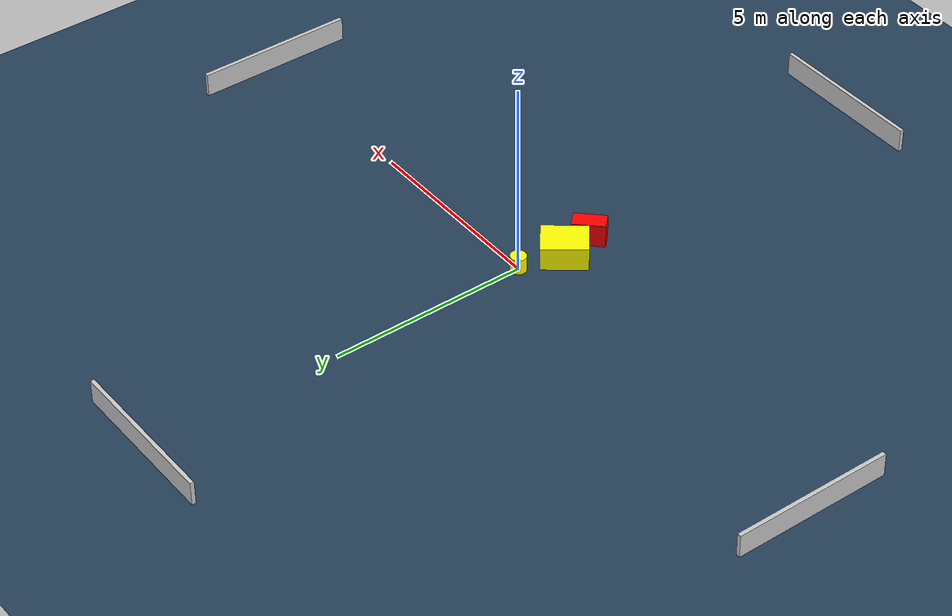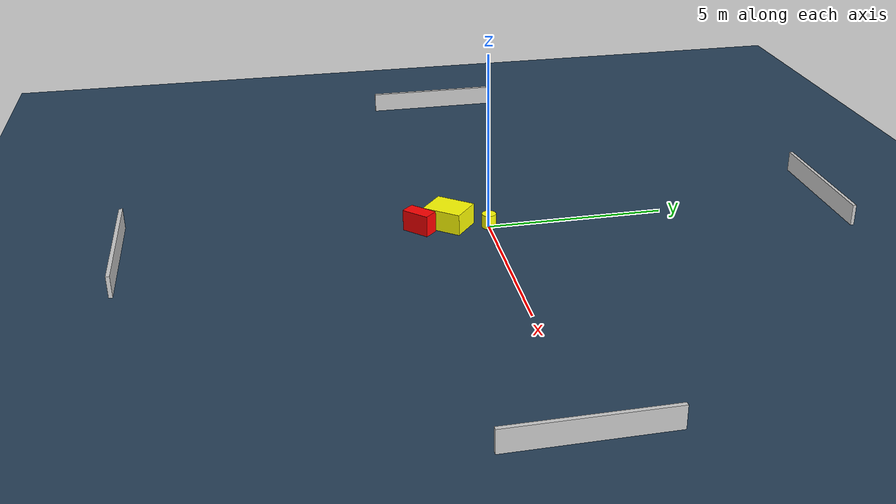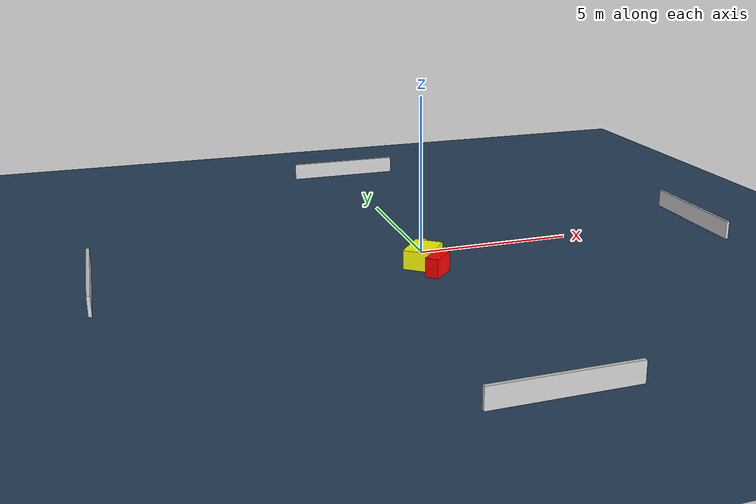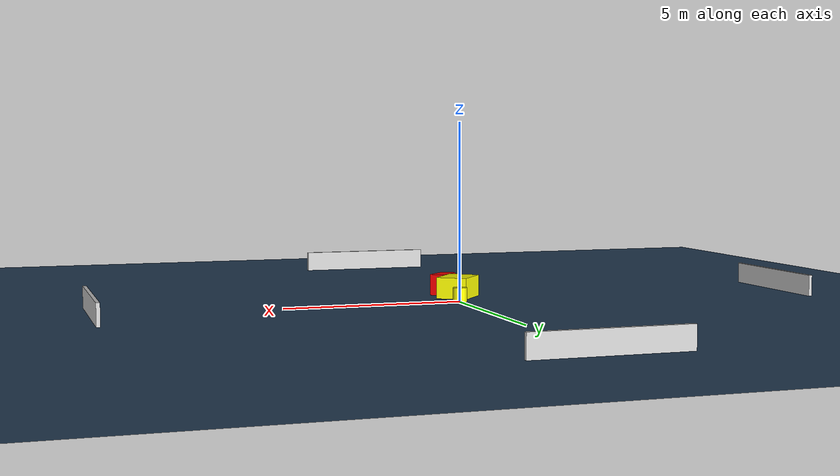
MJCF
<?xml version="1.0" ?>
<mujoco model="generated_environment">
  <option timestep="0.01" integrator="RK4" cone="elliptic"/>
  <default>
    <geom density="1"/>
  </default>
  <asset>
    <texture builtin="gradient" height="3072" name="skybox" rgb1="0.3 0.5 0.7" rgb2="0 0 0" type="skybox" width="512"/>
    <texture builtin="checker" height="300" name="groundplane" rgb1="0.2 0.3 0.4" rgb2="0.1 0.2 0.3" type="2d" width="300"/>
    <material name="groundplane" reflectance="0.2" texrepeat="5 5" texture="groundplane"/>
  </asset>
  <worldbody>
    <light dir="0 0 -1" directional="true" pos="0 0 1.5"/>
    <geom condim="3" friction="0.5 0.005 0.001" material="groundplane" name="floor" pos="0 0 0" size="0 0 0.05" type="plane"/>
    <body name="walls">
      <geom name="wall_1" condim="4" pos="-10.0 0.0 0.3" rgba="0.800000011920929 0.800000011920929 0.800000011920929 1.0" size="0.05 2.0 0.3" type="box"/>
      <geom name="wall_2" condim="4" pos="10.0 0.0 0.3" rgba="0.800000011920929 0.800000011920929 0.800000011920929 1.0" size="0.05 2.0 0.3" type="box"/>
      <geom name="wall_3" condim="4" pos="0.0 -10.0 0.3" rgba="0.800000011920929 0.800000011920929 0.800000011920929 1.0" size="2.0 0.05 0.3" type="box"/>
      <geom name="wall_4" condim="4" pos="0.0 10.0 0.3" rgba="0.800000011920929 0.800000011920929 0.800000011920929 1.0" size="2.0 0.05 0.3" type="box"/>
    </body>
    <body name="robot">
      <joint name="joint_x" type="slide" pos="0 0 0" axis="1 0 0"/>
      <joint name="joint_y" type="slide" pos="0 0 0" axis="0 1 0"/>
      <geom name="robot" type="cylinder" pos="0.0 0.0 0.2" size="0.2 0.2 0.0" mass="5.0" friction="1.0 0.005 0.0001" condim="4" rgba="1.0 1.0 0.0 1.0"/>
    </body>
    <body name="obstacle_1_movable">
      <geom name="obstacle_1_movable" condim="4" pos="-0.3140255691213736 -1.0859716183904762 0.3" euler="0 0 231.68799233323944" friction="0.0 0.005 0.001" rgba="1.0 1.0 0.0 1.0" size="0.5633621167680134 0.44250525656869966 0.3" type="box" mass="0.1"/>
      <joint type="free"/>
    </body>
    <body name="obstacle_2_static">
      <geom name="obstacle_2_static" condim="4" pos="-0.14744080766781262 -1.9391147632718115 0.3" euler="0 0 135.1262041747587" friction="0.0 0.005 0.001" rgba="1.0 0.0 0.0 1.0" size="0.21007428930662106 0.40640474748980565 0.3" type="box"/>
    </body>
  </worldbody>
  <actuator>
    <motor name="actuator_x" joint="joint_x" gear="1" ctrlrange="-1 1"/>
    <motor name="actuator_y" joint="joint_y" gear="1" ctrlrange="-1 1"/>
  </actuator>
</mujoco>
